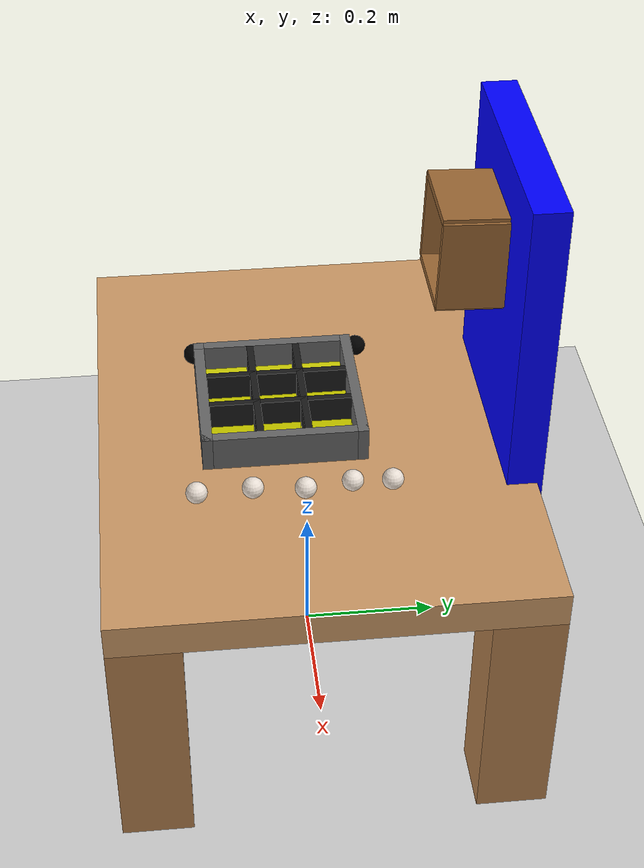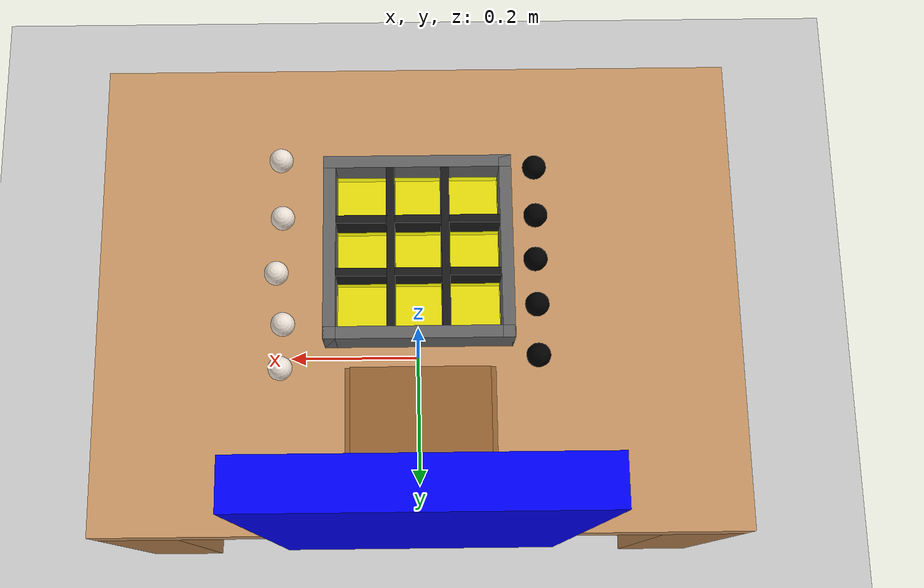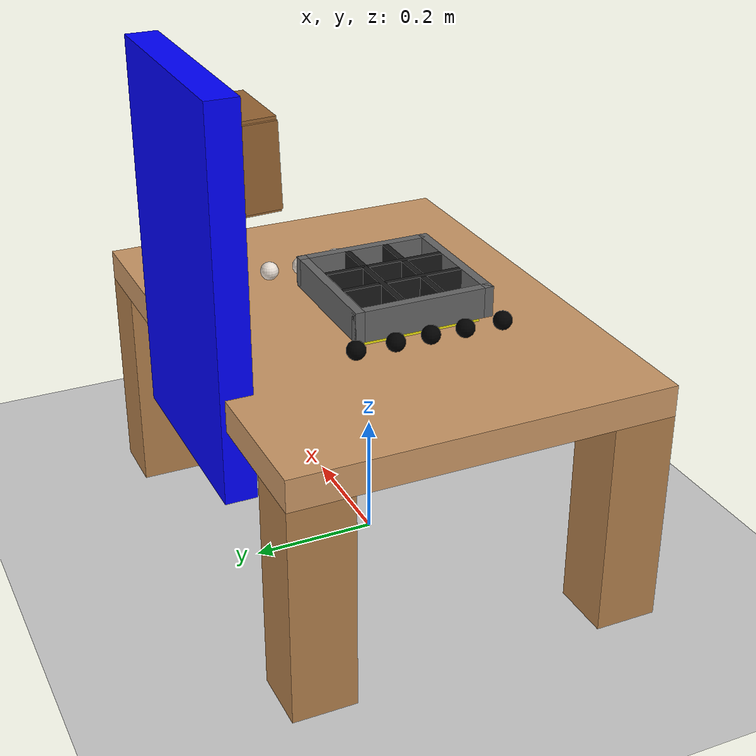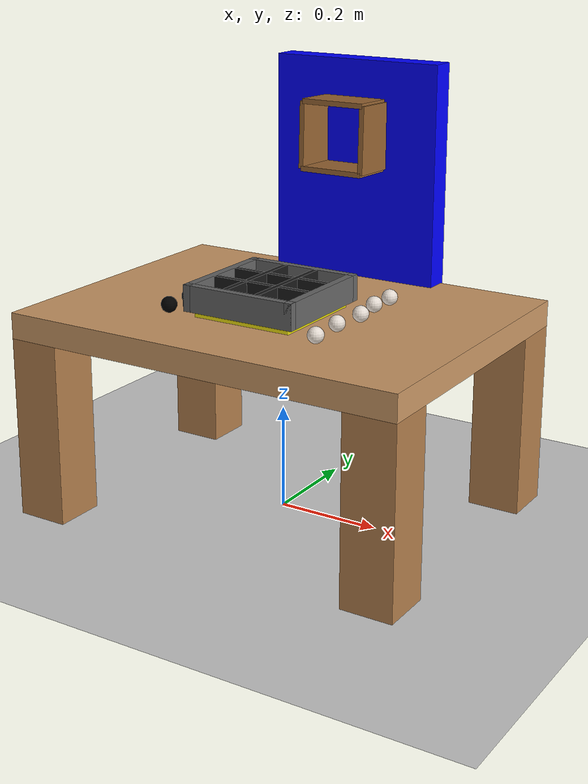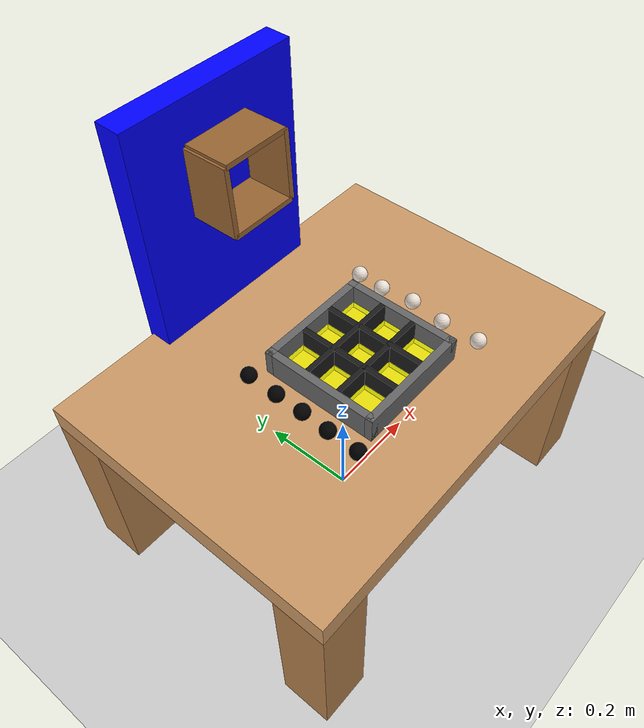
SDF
<sdf version="1.10">
 <world name="WORKINGPROTO">
  <physics name="1ms" type="ignored">
   <max_step_size>0.001</max_step_size>
   <real_time_factor>1</real_time_factor>
   <real_time_update_rate>1000</real_time_update_rate>
  </physics>
  <plugin name="gz::sim::systems::Physics" filename="gz-sim-physics-system"/>
  <plugin name="gz::sim::systems::UserCommands" filename="gz-sim-user-commands-system"/>
  <plugin name="gz::sim::systems::SceneBroadcaster" filename="gz-sim-scene-broadcaster-system"/>
  <gravity>0 0 -9.8000000000000007</gravity>
  <magnetic_field>5.5644999999999998e-06 2.2875799999999999e-05 -4.2388400000000002e-05</magnetic_field>
  <atmosphere type="adiabatic"/>
  <scene>
   <ambient>0.400000006 0.400000006 0.400000006 1</ambient>
   <background>0.699999988 0.699999988 0.699999988 1</background>
   <shadows>true</shadows>
  </scene>
  <model name="ground_plane">
   <static>true</static>
   <link name="link">
    <collision name="collision">
     <geometry><plane><normal>0 0 1</normal><size>100 100</size></plane></geometry>
     <surface>
      <contact><collide_bitmask>65535</collide_bitmask><ode><mu>100</mu><mu2>50</mu2></ode></contact>
      <friction><ode><mu>100</mu><mu2>50</mu2></ode></friction>
     </surface>
    </collision>
    <visual name="visual">
     <cast_shadows>false</cast_shadows>
     <geometry><plane><normal>0 0 1</normal><size>100 100</size></plane></geometry>
     <material>
      <ambient>0.800000012 0.800000012 0.800000012 1</ambient>
      <diffuse>0.800000012 0.800000012 0.800000012 1</diffuse>
      <specular>0 0 0 1</specular>
     </material>
    </visual>
    <inertial>
     <mass>1</mass>
     <inertia><ixx>1</ixx><ixy>0</ixy><ixz>0</ixz><iyy>1</iyy><iyz>0</iyz><izz>1</izz></inertia>
    </inertial>
   </link>
  </model>
  <model name="study_table">
   <static>true</static>
   <link name="table_link">
    <inertial>
     <mass>50</mass>
     <inertia><ixx>10</ixx><iyy>8</iyy><izz>6</izz><ixy>0</ixy><ixz>0</ixz><iyz>0</iyz></inertia>
    </inertial>
    <visual name="table_top">
     <pose>0 0 0.375 0 0 0</pose>
     <geometry><box><size>0.80000000000000004 0.59999999999999998 0.050000000000000003</size></box></geometry>
     <material>
      <ambient>0.800000012 0.600000024 0.400000006 1</ambient>
      <diffuse>0.800000012 0.600000024 0.400000006 1</diffuse>
     </material>
    </visual>
    <visual name="table_leg1">
     <pose>0.34999999999999998 0.25 0.17499999999999999 0 0 0</pose>
     <geometry><box><size>0.10000000000000001 0.10000000000000001 0.34999999999999998</size></box></geometry>
     <material>
      <ambient>0.699999988 0.5 0.300000012 1</ambient>
      <diffuse>0.699999988 0.5 0.300000012 1</diffuse>
     </material>
    </visual>
    <visual name="table_leg2">
     <pose>-0.34999999999999998 0.25 0.17499999999999999 0 0 0</pose>
     <geometry><box><size>0.10000000000000001 0.10000000000000001 0.34999999999999998</size></box></geometry>
     <material>
      <ambient>0.699999988 0.5 0.300000012 1</ambient>
      <diffuse>0.699999988 0.5 0.300000012 1</diffuse>
     </material>
    </visual>
    <visual name="table_leg3">
     <pose>0.34999999999999998 -0.25 0.17499999999999999 0 0 0</pose>
     <geometry><box><size>0.10000000000000001 0.10000000000000001 0.34999999999999998</size></box></geometry>
     <material>
      <ambient>0.699999988 0.5 0.300000012 1</ambient>
      <diffuse>0.699999988 0.5 0.300000012 1</diffuse>
     </material>
    </visual>
    <visual name="table_leg4">
     <pose>-0.34999999999999998 -0.25 0.17499999999999999 0 0 0</pose>
     <geometry><box><size>0.10000000000000001 0.10000000000000001 0.34999999999999998</size></box></geometry>
     <material>
      <ambient>0.699999988 0.5 0.300000012 1</ambient>
      <diffuse>0.699999988 0.5 0.300000012 1</diffuse>
     </material>
    </visual>
    <collision name="table_collision">
     <pose>0 0 0.375 0 0 0</pose>
     <geometry><box><size>0.80000000000000004 0.59999999999999998 0.050000000000000003</size></box></geometry>
    </collision>
   </link>
  </model>
  <model name="wall">
   <static>true</static>
   <pose>0 0.28255310654640198 0.68000000715255737 0 0 0</pose>
   <link name="wall_link">
    <inertial>
     <mass>20000000</mass>
     <inertia>
      <ixx>1.6699999999999999</ixx>
      <iyy>2.6699999999999999</iyy>
      <izz>1.0700000000000001</izz>
      <ixy>0</ixy>
      <ixz>0</ixz>
      <iyz>0</iyz>
     </inertia>
    </inertial>
    <visual name="wall_base">
     <pose>0 0 -0.15 0 0 0</pose>
     <geometry><box><size>0.34999999999999998 0.050000000000000003 0.59999999999999999</size></box></geometry>
     <material><ambient>0 0 1 1</ambient><diffuse>0 0 1 1</diffuse></material>
    </visual>
    <collision name="wall_base_collision">
     <pose>0 0 -0.15 0 0 0</pose>
     <geometry><box><size>0.34999999999999998 0.050000000000000003 0.59999999999999999</size></box></geometry>
    </collision>
   </link>
  </model>
  <model name="tictactoe_game">
   <static>false</static>
   <pose>-1.8166629351827535e-20 -0.04148043692111969 0.41249999406484006 -6.5030637354860295e-18 -2.1265438327383722e-18 5.8781331960763152e-20</pose>
   <link name="board">
    <inertial>
     <mass>2</mass>
     <inertia>
      <ixx>0.10000000000000001</ixx>
      <iyy>0.10000000000000001</iyy>
      <izz>0.10000000000000001</izz>
      <ixy>0</ixy>
      <ixz>0</ixz>
      <iyz>0</iyz>
     </inertia>
    </inertial>
    <visual name="board_visual">
     <geometry><box><size>0.20000000000000001 0.20000000000000001 0.025000000000000001</size></box></geometry>
     <material>
      <ambient>1.000000003 1.000000003 0.000000012 0.8</ambient>
      <diffuse>1.000000003 1.000000003 0.0000000012 0.8</diffuse>
     </material>
    </visual>
    <visual name="grid_line1">
     <pose>-0.033300000000000003 0 0.025 0 0 0</pose>
     <geometry><box><size>0.01 0.20000000000000001 0.05</size></box></geometry>
     <material>
      <ambient>0.100000001 0.100000001 0.100000001 1</ambient>
      <diffuse>0.100000001 0.100000001 0.100000001 1</diffuse>
     </material>
    </visual>
    <visual name="grid_line2">
     <pose>0.033300000000000003 0 0.025 0 0 0</pose>
     <geometry><box><size>0.01 0.20000000000000001 0.05</size></box></geometry>
     <material>
      <ambient>0.100000001 0.100000001 0.100000001 1</ambient>
      <diffuse>0.100000001 0.100000001 0.100000001 1</diffuse>
     </material>
    </visual>
    <visual name="grid_line3">
     <pose>0 -0.033300000000000003 0.025 0 0 0</pose>
     <geometry><box><size>0.20000000000000001 0.01 0.05</size></box></geometry>
     <material>
      <ambient>0.100000001 0.100000001 0.100000001 1</ambient>
      <diffuse>0.100000001 0.100000001 0.100000001 1</diffuse>
     </material>
    </visual>
    <visual name="grid_line4">
     <pose>0 0.033300000000000003 0.025 0 0 0</pose>
     <geometry><box><size>0.20000000000000001 0.01 0.05</size></box></geometry>
     <material>
      <ambient>0.100000001 0.100000001 0.100000001 1</ambient>
      <diffuse>0.100000001 0.100000001 0.100000001 1</diffuse>
     </material>
    </visual>
    <collision name="board_collision">
     <geometry><box><size>0.20000000000000001 0.20000000000000001 0.025000000000000001</size></box></geometry>
    </collision>
    <collision name="grid_line1_collision">
     <pose>-0.033300000000000003 0 0.025 0 0 0</pose>
     <geometry><box><size>0.01 0.20000000000000001 0.05</size></box></geometry>
    </collision>
    <collision name="grid_line2_collision">
     <pose>0.033300000000000003 0 0.025 0 0 0</pose>
     <geometry><box><size>0.01 0.20000000000000001 0.05</size></box></geometry>
    </collision>
    <collision name="grid_line3_collision">
     <pose>0 -0.033300000000000003 0.025 0 0 0</pose>
     <geometry><box><size>0.20000000000000001 0.01 0.05</size></box></geometry>
    </collision>
    <collision name="grid_line4_collision">
     <pose>0 0.033300000000000003 0.025 0 0 0</pose>
     <geometry><box><size>0.20000000000000001 0.01 0.05</size></box></geometry>
    </collision>
    <collision name="wall_north">
     <pose>0 0.1075 0.025 0 0 0</pose>
     <geometry><box><size>0.23 0.015 0.05</size></box></geometry>
    </collision>
    <visual name="wall_north_visual">
     <pose>0 0.1075 0.025 0 0 0</pose>
     <geometry><box><size>0.23 0.015 0.05</size></box></geometry>
     <material><ambient>0.4 0.4 0.4 1</ambient><diffuse>0.4 0.4 0.4 1</diffuse></material>
    </visual>
    <collision name="wall_south">
     <pose>0 -0.1075 0.025 0 0 0</pose>
     <geometry><box><size>0.23 0.015 0.05</size></box></geometry>
    </collision>
    <visual name="wall_south_visual">
     <pose>0 -0.1075 0.025 0 0 0</pose>
     <geometry><box><size>0.23 0.015 0.05</size></box></geometry>
     <material><ambient>0.4 0.4 0.4 1</ambient><diffuse>0.4 0.4 0.4 1</diffuse></material>
    </visual>
    <collision name="wall_east">
     <pose>0.1075 0 0.025 0 0 0</pose>
     <geometry><box><size>0.015 0.2 0.05</size></box></geometry>
    </collision>
    <visual name="wall_east_visual">
     <pose>0.1075 0 0.025 0 0 0</pose>
     <geometry><box><size>0.015 0.2 0.05</size></box></geometry>
     <material><ambient>0.4 0.4 0.4 1</ambient><diffuse>0.4 0.4 0.4 1</diffuse></material>
    </visual>
    <collision name="wall_west">
     <pose>-0.1075 0 0.025 0 0 0</pose>
     <geometry><box><size>0.015 0.2 0.05</size></box></geometry>
    </collision>
    <visual name="wall_west_visual">
     <pose>-0.1075 0 0.025 0 0 0</pose>
     <geometry><box><size>0.015 0.2 0.05</size></box></geometry>
     <material><ambient>0.4 0.4 0.4 1</ambient><diffuse>0.4 0.4 0.4 1</diffuse></material>
    </visual>
    <collision name="corner_ne">
     <pose>0.1075 0.1075 0.025 0 0 0</pose>
     <geometry><box><size>0.015 0.015 0.05</size></box></geometry>
    </collision>
    <visual name="corner_ne_visual">
     <pose>0.1075 0.1075 0.025 0 0 0</pose>
     <geometry><box><size>0.015 0.015 0.05</size></box></geometry>
     <material><ambient>0.4 0.4 0.4 1</ambient><diffuse>0.4 0.4 0.4 1</diffuse></material>
    </visual>
    <collision name="corner_nw">
     <pose>-0.1075 0.1075 0.025 0 0 0</pose>
     <geometry><box><size>0.015 0.015 0.05</size></box></geometry>
    </collision>
    <visual name="corner_nw_visual">
     <pose>-0.1075 0.1075 0.025 0 0 0</pose>
     <geometry><box><size>0.015 0.015 0.05</size></box></geometry>
     <material><ambient>0.4 0.4 0.4 1</ambient><diffuse>0.4 0.4 0.4 1</diffuse></material>
    </visual>
    <collision name="corner_se">
     <pose>0.1075 -0.1075 0.025 0 0 0</pose>
     <geometry><box><size>0.015 0.015 0.05</size></box></geometry>
    </collision>
    <visual name="corner_se_visual">
     <pose>0.1075 -0.1075 0.025 0 0 0</pose>
     <geometry><box><size>0.015 0.015 0.05</size></box></geometry>
     <material><ambient>0.4 0.4 0.4 1</ambient><diffuse>0.4 0.4 0.4 1</diffuse></material>
    </visual>
    <collision name="corner_sw">
     <pose>-0.1075 -0.1075 0.025 0 0 0</pose>
     <geometry><box><size>0.015 0.015 0.05</size></box></geometry>
    </collision>
    <visual name="corner_sw_visual">
     <pose>-0.1075 -0.1075 0.025 0 0 0</pose>
     <geometry><box><size>0.015 0.015 0.05</size></box></geometry>
     <material><ambient>0.4 0.4 0.4 1</ambient><diffuse>0.4 0.4 0.4 1</diffuse></material>
    </visual>
   </link>
  </model>
  <model name="o_piece_1">
   <static>false</static>
   <pose>-0.14749899506568909 -0.15554991364479062 0.41999901327813727 0 0 0</pose>
   <link name="o_link">
    <inertial>
     <mass>0.050000000000000003</mass>
     <inertia><ixx>0.001</ixx><iyy>0.001</iyy><izz>0.001</izz><ixy>0</ixy><ixz>0</ixz><iyz>0</iyz></inertia>
    </inertial>
    <visual name="o_visual">
     <geometry><sphere><radius>0.015</radius></sphere></geometry>
     <material><ambient>0 0 0 1</ambient><diffuse>0 0 0 1</diffuse></material>
    </visual>
    <collision name="o_collision"><geometry><sphere><radius>0.015</radius></sphere></geometry></collision>
   </link>
  </model>
  <model name="o_piece_2">
   <static>false</static>
   <pose>-0.14551700000000001 0.086727600000000002 0.41999900990190098 0 0 0</pose>
   <link name="o_link">
    <inertial>
     <mass>0.050000000000000003</mass>
     <inertia><ixx>0.001</ixx><iyy>0.001</iyy><izz>0.001</izz><ixy>0</ixy><ixz>0</ixz><iyz>0</iyz></inertia>
    </inertial>
    <visual name="o_visual">
     <geometry><sphere><radius>0.015</radius></sphere></geometry>
     <material><ambient>0 0 0 1</ambient><diffuse>0 0 0 1</diffuse></material>
    </visual>
    <collision name="o_collision"><geometry><sphere><radius>0.015</radius></sphere></geometry></collision>
   </link>
  </model>
  <model name="o_piece_3">
   <static>false</static>
   <pose>-0.14555599999999999 -0.035008900000000003 0.41999900990190098 0 0 0</pose>
   <link name="o_link">
    <inertial>
     <mass>0.050000000000000003</mass>
     <inertia><ixx>0.001</ixx><iyy>0.001</iyy><izz>0.001</izz><ixy>0</ixy><ixz>0</ixz><iyz>0</iyz></inertia>
    </inertial>
    <visual name="o_visual">
     <geometry><sphere><radius>0.015</radius></sphere></geometry>
     <material><ambient>0 0 0 1</ambient><diffuse>0 0 0 1</diffuse></material>
    </visual>
    <collision name="o_collision"><geometry><sphere><radius>0.015</radius></sphere></geometry></collision>
   </link>
  </model>
  <model name="o_piece_4">
   <static>false</static>
   <pose>-0.14728341996669772 -0.092032432556152344 0.41999901327813727 3.6146901328352088e-08 -1.4980699865882415e-08 1.7977899912743866e-06</pose>
   <link name="o_link">
    <inertial>
     <mass>0.050000000000000003</mass>
     <inertia><ixx>0.001</ixx><iyy>0.001</iyy><izz>0.001</izz><ixy>0</ixy><ixz>0</ixz><iyz>0</iyz></inertia>
    </inertial>
    <visual name="o_visual">
     <geometry><sphere><radius>0.015</radius></sphere></geometry>
     <material><ambient>0 0 0 1</ambient><diffuse>0 0 0 1</diffuse></material>
    </visual>
    <collision name="o_collision"><geometry><sphere><radius>0.015</radius></sphere></geometry></collision>
   </link>
  </model>
  <model name="o_piece_5">
   <static>false</static>
   <pose>-0.14580499999999999 0.022861599999999999 0.41999900990190098 0 0 0</pose>
   <link name="o_link">
    <inertial>
     <mass>0.050000000000000003</mass>
     <inertia><ixx>0.001</ixx><iyy>0.001</iyy><izz>0.001</izz><ixy>0</ixy><ixz>0</ixz><iyz>0</iyz></inertia>
    </inertial>
    <visual name="o_visual">
     <geometry><sphere><radius>0.015</radius></sphere></geometry>
     <material><ambient>0 0 0 1</ambient><diffuse>0 0 0 1</diffuse></material>
    </visual>
    <collision name="o_collision"><geometry><sphere><radius>0.015</radius></sphere></geometry></collision>
   </link>
  </model>
  <model name="robot_box">
   <static>true</static>
   <pose>0 0.21924400329589844 0.68879997730255127 1.5400002335725291 0 0</pose>
   <link name="box_link">
    <inertial>
     <mass>5</mass>
     <inertia>
      <ixx>0.10000000000000001</ixx>
      <iyy>0.10000000000000001</iyy>
      <izz>0.10000000000000001</izz>
      <ixy>0</ixy>
      <ixz>0</ixz>
      <iyz>0</iyz>
     </inertia>
    </inertial>
    <visual name="front_wall">
     <pose>0.065 0 0 0 0 0</pose>
     <geometry><box><size>0.01 0.13 0.105</size></box></geometry>
     <material>
      <ambient>0.600000024 0.400000006 0.200000003 1</ambient>
      <diffuse>0.600000024 0.400000006 0.200000003 1</diffuse>
     </material>
    </visual>
    <collision name="front_wall_collision">
     <pose>0.065 0 0 0 0 0</pose>
     <geometry><box><size>0.01 0.13 0.105</size></box></geometry>
    </collision>
    <visual name="back_wall">
     <pose>-0.065 0 0 0 0 0</pose>
     <geometry><box><size>0.01 0.13 0.105</size></box></geometry>
     <material>
      <ambient>0.600000024 0.400000006 0.200000003 1</ambient>
      <diffuse>0.600000024 0.400000006 0.200000003 1</diffuse>
     </material>
    </visual>
    <collision name="back_wall_collision">
     <pose>-0.065 0 0 0 0 0</pose>
     <geometry><box><size>0.01 0.13 0.105</size></box></geometry>
    </collision>
    <visual name="left_wall">
     <pose>0 0.065 0 0 0 0</pose>
     <geometry><box><size>0.13 0.01 0.105</size></box></geometry>
     <material>
      <ambient>0.600000024 0.400000006 0.200000003 1</ambient>
      <diffuse>0.600000024 0.400000006 0.200000003 1</diffuse>
     </material>
    </visual>
    <collision name="left_wall_collision">
     <pose>0 0.065 0 0 0 0</pose>
     <geometry><box><size>0.13 0.01 0.105</size></box></geometry>
    </collision>
    <visual name="right_wall">
     <pose>0 -0.065 0 0 0 0</pose>
     <geometry><box><size>0.13 0.01 0.105</size></box></geometry>
     <material>
      <ambient>0.600000024 0.400000006 0.200000003 1</ambient>
      <diffuse>0.600000024 0.400000006 0.200000003 1</diffuse>
     </material>
    </visual>
    <collision name="right_wall_collision">
     <pose>0 -0.065 0 0 0 0</pose>
     <geometry><box><size>0.13 0.01 0.105</size></box></geometry>
    </collision>
   </link>
  </model>
  <model name="x_piece_1">
   <static>false</static>
   <pose>0.16868799924850464 -0.091408386826515198 0.41999901327813727 0 0 0</pose>
   <link name="x_link">
    <inertial>
     <mass>0.050000000000000003</mass>
     <inertia><ixx>0.001</ixx><iyy>0.001</iyy><izz>0.001</izz><ixy>0</ixy><ixz>0</ixz><iyz>0</iyz></inertia>
    </inertial>
    <visual name="x_visual">
     <geometry><sphere><radius>0.015</radius></sphere></geometry>
     <material><ambient>1 1 1 0.8</ambient><diffuse>1 1 1 0.8</diffuse></material>
    </visual>
    <collision name="x_collision"><geometry><sphere><radius>0.015</radius></sphere></geometry></collision>
   </link>
  </model>
  <model name="x_piece_2">
   <static>false</static>
   <pose>0.16940295696258545 0.10000000149011612 0.41999902304725822 0 0 0</pose>
   <link name="x_link">
    <inertial>
     <mass>0.050000000000000003</mass>
     <inertia><ixx>0.001</ixx><iyy>0.001</iyy><izz>0.001</izz><ixy>0</ixy><ixz>0</ixz><iyz>0</iyz></inertia>
    </inertial>
    <visual name="x_visual">
     <geometry><sphere><radius>0.015</radius></sphere></geometry>
     <material><ambient>1 1 1 0.8</ambient><diffuse>1 1 1 0.8</diffuse></material>
    </visual>
    <collision name="x_collision"><geometry><sphere><radius>0.015</radius></sphere></geometry></collision>
   </link>
  </model>
  <model name="x_piece_3">
   <static>false</static>
   <pose>0.16690699756145477 0.04513685405254364 0.41999902304725822 0 0 0</pose>
   <link name="x_link">
    <inertial>
     <mass>0.050000000000000003</mass>
     <inertia><ixx>0.001</ixx><iyy>0.001</iyy><izz>0.001</izz><ixy>0</ixy><ixz>0</ixz><iyz>0</iyz></inertia>
    </inertial>
    <visual name="x_visual">
     <geometry><sphere><radius>0.015</radius></sphere></geometry>
     <material><ambient>1 1 1 0.8</ambient><diffuse>1 1 1 0.8</diffuse></material>
    </visual>
    <collision name="x_collision"><geometry><sphere><radius>0.015</radius></sphere></geometry></collision>
   </link>
  </model>
  <model name="x_piece_4">
   <static>false</static>
   <pose>0.17164875566959381 -0.16792421042919159 0.41999998378370185 5.4253501681478254e-08 2.262600068903431e-08 -5.9116098268038564e-07</pose>
   <link name="x_link">
    <inertial>
     <mass>0.050000000000000003</mass>
     <inertia><ixx>0.001</ixx><iyy>0.001</iyy><izz>0.001</izz><ixy>0</ixy><ixz>0</ixz><iyz>0</iyz></inertia>
    </inertial>
    <visual name="x_visual">
     <geometry><sphere><radius>0.015</radius></sphere></geometry>
     <material><ambient>1 1 1 0.8</ambient><diffuse>1 1 1 0.8</diffuse></material>
    </visual>
    <collision name="x_collision"><geometry><sphere><radius>0.015</radius></sphere></geometry></collision>
   </link>
  </model>
  <model name="x_piece_5">
   <static>false</static>
   <pose>0.17582499980926514 -0.020129891112446785 0.41999902304725822 0 0 0</pose>
   <link name="x_link">
    <inertial>
     <mass>0.050000000000000003</mass>
     <inertia><ixx>0.001</ixx><iyy>0.001</iyy><izz>0.001</izz><ixy>0</ixy><ixz>0</ixz><iyz>0</iyz></inertia>
    </inertial>
    <visual name="x_visual">
     <geometry><sphere><radius>0.015</radius></sphere></geometry>
     <material><ambient>1 1 1 0.8</ambient><diffuse>1 1 1 0.8</diffuse></material>
    </visual>
    <collision name="x_collision"><geometry><sphere><radius>0.015</radius></sphere></geometry></collision>
   </link>
  </model>
  <light name="sun" type="directional">
   <pose>0 0 10 0 0 0</pose>
   <intensity>1</intensity>
   <direction>-0.5 0.10000000000000001 -0.90000000000000002</direction>
   <diffuse>0.800000012 0.800000012 0.800000012 1</diffuse>
   <specular>0.200000003 0.200000003 0.200000003 1</specular>
   <attenuation>
    <range>1000</range>
    <linear>0.0099999997764825821</linear>
    <constant>0.89999997615814209</constant>
    <quadratic>0.0010000000474974513</quadratic>
   </attenuation>
   <spot><inner_angle>0</inner_angle><outer_angle>0</outer_angle><falloff>0</falloff></spot>
  </light>
 </world>
</sdf>
